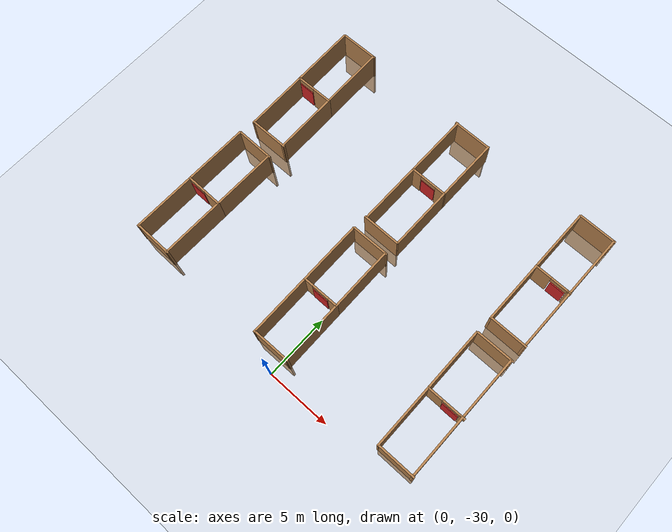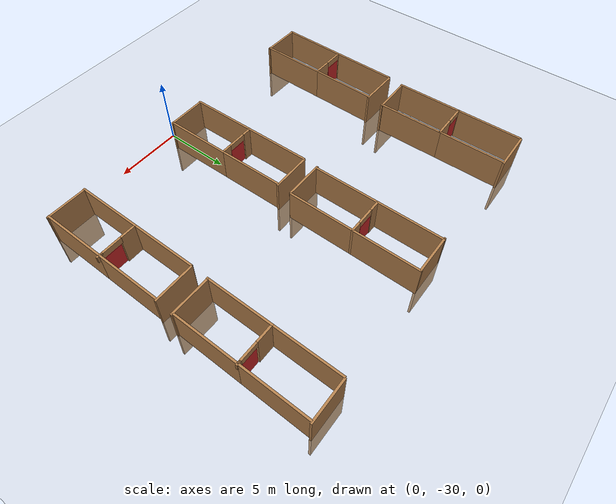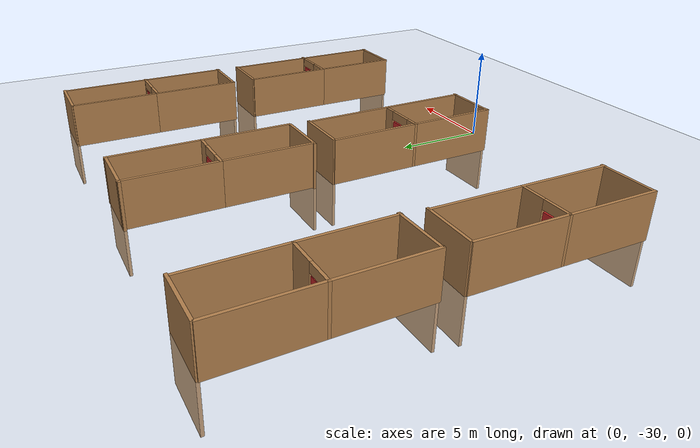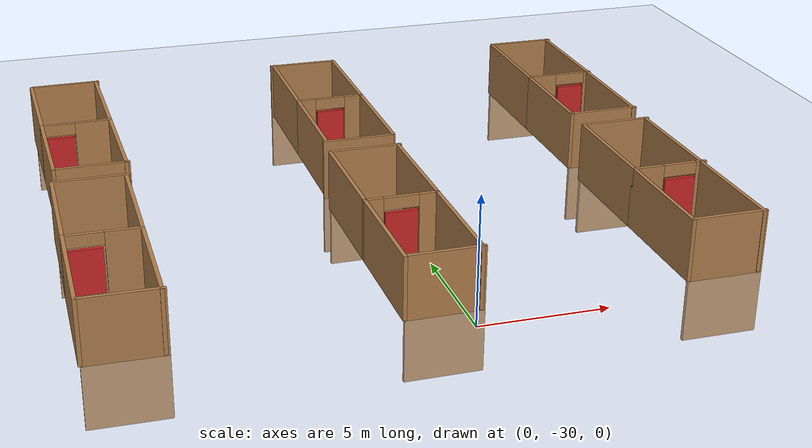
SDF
<sdf version="1.6">
 <world name="default">
  <model name="ground_plane">
   <static>1</static>
   <link name="link">
    <collision name="collision">
     <geometry><plane><normal>0 0 1</normal><size>100 100</size></plane></geometry>
     <surface><friction><ode><mu>100</mu><mu2>50</mu2></ode></friction></surface>
    </collision>
    <visual name="visual">
     <cast_shadows>0</cast_shadows>
     <geometry><plane><normal>0 0 1</normal><size>100 100</size></plane></geometry>
     <material>
      <script><uri>file://media/materials/scripts/gazebo.material</uri><name>Gazebo/Grey</name></script>
     </material>
    </visual>
   </link>
  </model>
  <model name="door_5">
   <link name="hinge">
    <inertial>
     <pose>-0.05 0 0 0 -0 0</pose>
     <mass>0.01</mass>
     <inertia><ixx>1</ixx><ixy>0</ixy><ixz>0</ixz><iyy>100</iyy><iyz>0</iyz><izz>1</izz></inertia>
    </inertial>
    <velocity_decay><linear>0</linear><angular>0</angular></velocity_decay>
   </link>
   <link name="door">
    <pose>0.1 -0.7 0.35 0 0 -1.57</pose>
    <inertial>
     <pose>0.1 -0.7 0.35 0 0 -1.57</pose>
     <mass>0.1</mass>
     <inertia><ixx>1</ixx><ixy>0</ixy><ixz>0</ixz><iyy>100</iyy><iyz>0</iyz><izz>1</izz></inertia>
    </inertial>
    <collision name="door_collision">
     <pose>0.1 -0.7 0.35 0 0 -1.57</pose>
     <geometry><box><size>1.2 0.15 1.8</size></box></geometry>
    </collision>
    <visual name="door_visual">
     <pose>0.1 -0.7 0.35 0 0 -1.57</pose>
     <geometry><box><size>1.2 0.15 1.8</size></box></geometry>
     <material><script><name>Gazebo/Red</name><uri>__default__</uri></script></material>
    </visual>
    <velocity_decay><linear>0</linear><angular>0</angular></velocity_decay>
   </link>
   <joint name="door_hinge" type="revolute">
    <child>door</child>
    <parent>hinge</parent>
    <pose>0.08 0 0 0 -0 0</pose>
    <axis>
     <xyz>0 0 1</xyz>
     <limit><lower>-1.57</lower><upper>1.57</upper><effort>0</effort><velocity>10</velocity></limit>
     <dynamics><spring_reference>0</spring_reference><spring_stiffness>0</spring_stiffness></dynamics>
     <use_parent_model_frame>0</use_parent_model_frame>
    </axis>
   </joint>
   <joint name="floor_link" type="revolute">
    <child>hinge</child>
    <parent>world</parent>
    <axis>
     <xyz>0 0 1</xyz>
     <limit><lower>0</lower><upper>0</upper><effort>0</effort><velocity>0</velocity></limit>
     <dynamics><spring_reference>0</spring_reference><spring_stiffness>0</spring_stiffness></dynamics>
     <use_parent_model_frame>0</use_parent_model_frame>
    </axis>
   </joint>
   <plugin name="door_plugin" filename="libdoor_plugin.so">
    <door_type>flip</door_type>
    <model_domain_space>door_</model_domain_space>
    <door_direction>clockwise</door_direction>
    <robotNamespace>/</robotNamespace>
   </plugin>
   <pose>-0.138625 -12.2538 0.3 0 -0 0</pose>
  </model>
  <model name="door_6">
   <link name="hinge">
    <inertial>
     <pose>-0.05 0 0 0 -0 0</pose>
     <mass>0.01</mass>
     <inertia><ixx>1</ixx><ixy>0</ixy><ixz>0</ixz><iyy>100</iyy><iyz>0</iyz><izz>1</izz></inertia>
    </inertial>
    <velocity_decay><linear>0</linear><angular>0</angular></velocity_decay>
   </link>
   <link name="door">
    <pose>0.1 -0.75 0.35 0 0 -1.57</pose>
    <inertial>
     <pose>0.1 -0.75 0.35 0 0 -1.57</pose>
     <mass>0.1</mass>
     <inertia><ixx>1</ixx><ixy>0</ixy><ixz>0</ixz><iyy>100</iyy><iyz>0</iyz><izz>1</izz></inertia>
    </inertial>
    <collision name="door_collision">
     <pose>0.1 -0.75 0.35 0 0 -1.57</pose>
     <geometry><box><size>1.3 0.15 1.8</size></box></geometry>
    </collision>
    <visual name="door_visual">
     <pose>0.1 -0.75 0.35 0 0 -1.57</pose>
     <geometry><box><size>1.3 0.15 1.8</size></box></geometry>
     <material><script><name>Gazebo/Red</name><uri>__default__</uri></script></material>
    </visual>
    <velocity_decay><linear>0</linear><angular>0</angular></velocity_decay>
   </link>
   <joint name="door_hinge" type="revolute">
    <child>door</child>
    <parent>hinge</parent>
    <pose>0.08 0 0 0 -0 0</pose>
    <axis>
     <xyz>0 0 1</xyz>
     <limit><lower>-1.57</lower><upper>1.57</upper><effort>0</effort><velocity>10</velocity></limit>
     <dynamics><spring_reference>0</spring_reference><spring_stiffness>0</spring_stiffness></dynamics>
     <use_parent_model_frame>0</use_parent_model_frame>
    </axis>
   </joint>
   <joint name="floor_link" type="revolute">
    <child>hinge</child>
    <parent>world</parent>
    <axis>
     <xyz>0 0 1</xyz>
     <limit><lower>0</lower><upper>0</upper><effort>0</effort><velocity>0</velocity></limit>
     <dynamics><spring_reference>0</spring_reference><spring_stiffness>0</spring_stiffness></dynamics>
     <use_parent_model_frame>0</use_parent_model_frame>
    </axis>
   </joint>
   <plugin name="door_plugin" filename="libdoor_plugin.so">
    <door_type>flip</door_type>
    <model_domain_space>door_</model_domain_space>
    <door_direction>clockwise</door_direction>
    <robotNamespace>/</robotNamespace>
   </plugin>
   <pose>-0.228773 -23.1883 0.3 0 -0 0</pose>
  </model>
  <model name="door_8">
   <link name="hinge">
    <inertial>
     <pose>-0.05 0 0 0 -0 0</pose>
     <mass>0.01</mass>
     <inertia><ixx>1</ixx><ixy>0</ixy><ixz>0</ixz><iyy>100</iyy><iyz>0</iyz><izz>1</izz></inertia>
    </inertial>
    <velocity_decay><linear>0</linear><angular>0</angular></velocity_decay>
   </link>
   <link name="door">
    <pose>0.1 -0.7 0.35 0 0 -1.57</pose>
    <inertial>
     <pose>0.1 -0.7 0.35 0 0 -1.57</pose>
     <mass>0.1</mass>
     <inertia><ixx>1</ixx><ixy>0</ixy><ixz>0</ixz><iyy>100</iyy><iyz>0</iyz><izz>1</izz></inertia>
    </inertial>
    <collision name="door_collision">
     <pose>0.1 -0.7 0.35 0 0 -1.57</pose>
     <geometry><box><size>1.2 0.15 1.8</size></box></geometry>
    </collision>
    <visual name="door_visual">
     <pose>0.1 -0.7 0.35 0 0 -1.57</pose>
     <geometry><box><size>1.2 0.15 1.8</size></box></geometry>
     <material><script><name>Gazebo/Red</name><uri>__default__</uri></script></material>
    </visual>
    <velocity_decay><linear>0</linear><angular>0</angular></velocity_decay>
   </link>
   <joint name="door_hinge" type="revolute">
    <child>door</child>
    <parent>hinge</parent>
    <pose>0.08 0 0 0 -0 0</pose>
    <axis>
     <xyz>0 0 1</xyz>
     <limit><lower>-1.57</lower><upper>1.57</upper><effort>0</effort><velocity>10</velocity></limit>
     <dynamics><spring_reference>0</spring_reference><spring_stiffness>0</spring_stiffness></dynamics>
     <use_parent_model_frame>0</use_parent_model_frame>
    </axis>
   </joint>
   <joint name="floor_link" type="revolute">
    <child>hinge</child>
    <parent>world</parent>
    <axis>
     <xyz>0 0 1</xyz>
     <limit><lower>0</lower><upper>0</upper><effort>0</effort><velocity>0</velocity></limit>
     <dynamics><spring_reference>0</spring_reference><spring_stiffness>0</spring_stiffness></dynamics>
     <use_parent_model_frame>0</use_parent_model_frame>
    </axis>
   </joint>
   <plugin name="door_plugin" filename="libdoor_plugin.so">
    <door_type>flip</door_type>
    <model_domain_space>door_</model_domain_space>
    <door_direction>clockwise</door_direction>
    <robotNamespace>/</robotNamespace>
   </plugin>
   <pose>11.3057 -12.1813 0.3 0 -0 0</pose>
  </model>
  <model name="door_9">
   <link name="hinge">
    <inertial>
     <pose>-0.05 0 0 0 -0 0</pose>
     <mass>0.01</mass>
     <inertia><ixx>1</ixx><ixy>0</ixy><ixz>0</ixz><iyy>100</iyy><iyz>0</iyz><izz>1</izz></inertia>
    </inertial>
    <velocity_decay><linear>0</linear><angular>0</angular></velocity_decay>
   </link>
   <link name="door">
    <pose>0.1 -0.75 0.35 0 0 -1.57</pose>
    <inertial>
     <pose>0.1 -0.75 0.35 0 0 -1.57</pose>
     <mass>0.1</mass>
     <inertia><ixx>1</ixx><ixy>0</ixy><ixz>0</ixz><iyy>100</iyy><iyz>0</iyz><izz>1</izz></inertia>
    </inertial>
    <collision name="door_collision">
     <pose>0.1 -0.75 0.35 0 0 -1.57</pose>
     <geometry><box><size>1.3 0.15 1.8</size></box></geometry>
    </collision>
    <visual name="door_visual">
     <pose>0.1 -0.75 0.35 0 0 -1.57</pose>
     <geometry><box><size>1.3 0.15 1.8</size></box></geometry>
     <material><script><name>Gazebo/Red</name><uri>__default__</uri></script></material>
    </visual>
    <velocity_decay><linear>0</linear><angular>0</angular></velocity_decay>
   </link>
   <joint name="door_hinge" type="revolute">
    <child>door</child>
    <parent>hinge</parent>
    <pose>0.08 0 0 0 -0 0</pose>
    <axis>
     <xyz>0 0 1</xyz>
     <limit><lower>-1.57</lower><upper>1.57</upper><effort>0</effort><velocity>10</velocity></limit>
     <dynamics><spring_reference>0</spring_reference><spring_stiffness>0</spring_stiffness></dynamics>
     <use_parent_model_frame>0</use_parent_model_frame>
    </axis>
   </joint>
   <joint name="floor_link" type="revolute">
    <child>hinge</child>
    <parent>world</parent>
    <axis>
     <xyz>0 0 1</xyz>
     <limit><lower>0</lower><upper>0</upper><effort>0</effort><velocity>0</velocity></limit>
     <dynamics><spring_reference>0</spring_reference><spring_stiffness>0</spring_stiffness></dynamics>
     <use_parent_model_frame>0</use_parent_model_frame>
    </axis>
   </joint>
   <plugin name="door_plugin" filename="libdoor_plugin.so">
    <door_type>flip</door_type>
    <model_domain_space>door_</model_domain_space>
    <door_direction>clockwise</door_direction>
    <robotNamespace>/</robotNamespace>
   </plugin>
   <pose>11.2429 -23.2301 0.3 0 -0 0</pose>
  </model>
  <model name="door_13">
   <link name="hinge">
    <inertial>
     <pose>-0.05 0 0 0 -0 0</pose>
     <mass>0.01</mass>
     <inertia><ixx>1</ixx><ixy>0</ixy><ixz>0</ixz><iyy>100</iyy><iyz>0</iyz><izz>1</izz></inertia>
    </inertial>
    <velocity_decay><linear>0</linear><angular>0</angular></velocity_decay>
   </link>
   <link name="door">
    <pose>0.1 -0.75 0.35 0 0 -1.57</pose>
    <inertial>
     <pose>0.1 -0.75 0.35 0 0 -1.57</pose>
     <mass>0.1</mass>
     <inertia><ixx>1</ixx><ixy>0</ixy><ixz>0</ixz><iyy>100</iyy><iyz>0</iyz><izz>1</izz></inertia>
    </inertial>
    <collision name="door_collision">
     <pose>0.1 -0.75 0.35 0 0 -1.57</pose>
     <geometry><box><size>1.3 0.15 1.8</size></box></geometry>
    </collision>
    <visual name="door_visual">
     <pose>0.1 -0.75 0.35 0 0 -1.57</pose>
     <geometry><box><size>1.3 0.15 1.8</size></box></geometry>
     <material><script><name>Gazebo/Red</name><uri>__default__</uri></script></material>
    </visual>
    <velocity_decay><linear>0</linear><angular>0</angular></velocity_decay>
   </link>
   <joint name="door_hinge" type="revolute">
    <child>door</child>
    <parent>hinge</parent>
    <pose>0.08 0 0 0 -0 0</pose>
    <axis>
     <xyz>0 0 1</xyz>
     <limit><lower>-1.57</lower><upper>1.57</upper><effort>0</effort><velocity>10</velocity></limit>
     <dynamics><spring_reference>0</spring_reference><spring_stiffness>0</spring_stiffness></dynamics>
     <use_parent_model_frame>0</use_parent_model_frame>
    </axis>
   </joint>
   <joint name="floor_link" type="revolute">
    <child>hinge</child>
    <parent>world</parent>
    <axis>
     <xyz>0 0 1</xyz>
     <limit><lower>0</lower><upper>0</upper><effort>0</effort><velocity>0</velocity></limit>
     <dynamics><spring_reference>0</spring_reference><spring_stiffness>0</spring_stiffness></dynamics>
     <use_parent_model_frame>0</use_parent_model_frame>
    </axis>
   </joint>
   <plugin name="door_plugin" filename="libdoor_plugin.so">
    <door_type>flip</door_type>
    <model_domain_space>door_</model_domain_space>
    <door_direction>clockwise</door_direction>
    <robotNamespace>/</robotNamespace>
   </plugin>
   <pose>-11.9963 -23.2247 0.3 0 -0 0</pose>
  </model>
  <model name="door_14">
   <link name="hinge">
    <inertial>
     <pose>-0.05 0 0 0 -0 0</pose>
     <mass>0.01</mass>
     <inertia><ixx>1</ixx><ixy>0</ixy><ixz>0</ixz><iyy>100</iyy><iyz>0</iyz><izz>1</izz></inertia>
    </inertial>
    <velocity_decay><linear>0</linear><angular>0</angular></velocity_decay>
   </link>
   <link name="door">
    <pose>0.1 -0.7 0.35 0 0 -1.57</pose>
    <inertial>
     <pose>0.1 -0.7 0.35 0 0 -1.57</pose>
     <mass>0.1</mass>
     <inertia><ixx>1</ixx><ixy>0</ixy><ixz>0</ixz><iyy>100</iyy><iyz>0</iyz><izz>1</izz></inertia>
    </inertial>
    <collision name="door_collision">
     <pose>0.1 -0.7 0.35 0 0 -1.57</pose>
     <geometry><box><size>1.2 0.15 1.8</size></box></geometry>
    </collision>
    <visual name="door_visual">
     <pose>0.1 -0.7 0.35 0 0 -1.57</pose>
     <geometry><box><size>1.2 0.15 1.8</size></box></geometry>
     <material><script><name>Gazebo/Red</name><uri>__default__</uri></script></material>
    </visual>
    <velocity_decay><linear>0</linear><angular>0</angular></velocity_decay>
   </link>
   <joint name="door_hinge" type="revolute">
    <child>door</child>
    <parent>hinge</parent>
    <pose>0.08 0 0 0 -0 0</pose>
    <axis>
     <xyz>0 0 1</xyz>
     <limit><lower>-1.57</lower><upper>1.57</upper><effort>0</effort><velocity>10</velocity></limit>
     <dynamics><spring_reference>0</spring_reference><spring_stiffness>0</spring_stiffness></dynamics>
     <use_parent_model_frame>0</use_parent_model_frame>
    </axis>
   </joint>
   <joint name="floor_link" type="revolute">
    <child>hinge</child>
    <parent>world</parent>
    <axis>
     <xyz>0 0 1</xyz>
     <limit><lower>0</lower><upper>0</upper><effort>0</effort><velocity>0</velocity></limit>
     <dynamics><spring_reference>0</spring_reference><spring_stiffness>0</spring_stiffness></dynamics>
     <use_parent_model_frame>0</use_parent_model_frame>
    </axis>
   </joint>
   <plugin name="door_plugin" filename="libdoor_plugin.so">
    <door_type>flip</door_type>
    <model_domain_space>door_</model_domain_space>
    <door_direction>clockwise</door_direction>
    <robotNamespace>/</robotNamespace>
   </plugin>
   <pose>-11.8998 -12.2711 0.3 0 -0 0</pose>
  </model>
  <model name="middle140">
   <pose>-1.27812 -23.998 0 0 -0 1.57754</pose>
   <link name="Wall_11">
    <collision name="Wall_11_Collision">
     <geometry><box><size>5 0.15 2.5</size></box></geometry>
     <pose>0 0 1.25 0 -0 0</pose>
    </collision>
    <visual name="Wall_11_Visual">
     <pose>0 0 1.25 0 -0 0</pose>
     <geometry><box><size>5 0.15 2.5</size></box></geometry>
     <material>
      <script><uri>file://media/materials/scripts/gazebo.material</uri><name>Gazebo/Wood</name></script>
      <ambient>1 1 1 1</ambient>
     </material>
     <meta><layer>0</layer></meta>
    </visual>
    <pose>-2.425 -1.83058 0 0 -0 3.14159</pose>
   </link>
   <link name="Wall_5">
    <collision name="Wall_5_Collision">
     <geometry><box><size>5 0.15 2.5</size></box></geometry>
     <pose>0 0 1.25 0 -0 0</pose>
    </collision>
    <visual name="Wall_5_Visual">
     <pose>0 0 1.25 0 -0 0</pose>
     <geometry><box><size>5 0.15 2.5</size></box></geometry>
     <material>
      <script><uri>file://media/materials/scripts/gazebo.material</uri><name>Gazebo/Wood</name></script>
      <ambient>1 1 1 1</ambient>
     </material>
     <meta><layer>0</layer></meta>
    </visual>
    <pose>-2.425 1.01942 0 0 -0 0</pose>
   </link>
   <link name="Wall_6">
    <pose>0 -0.405576 0 0 -0 -1.5708</pose>
    <visual name="Wall_6_Visual_0">
     <pose>-1.1025 0 1.25 0 -0 0</pose>
     <geometry><box><size>0.795 0.15 2.5</size></box></geometry>
     <material>
      <script><uri>file://media/materials/scripts/gazebo.material</uri><name>Gazebo/Wood</name></script>
      <ambient>1 1 1 1</ambient>
     </material>
     <meta><layer>0</layer></meta>
    </visual>
    <collision name="Wall_6_Collision_0">
     <geometry><box><size>0.795 0.15 2.5</size></box></geometry>
     <pose>-1.1025 0 1.25 0 -0 0</pose>
    </collision>
    <visual name="Wall_6_Visual_1">
     <pose>1.0975 0 1.25 0 -0 0</pose>
     <geometry><box><size>0.805 0.15 2.5</size></box></geometry>
     <material>
      <script><uri>file://media/materials/scripts/gazebo.material</uri><name>Gazebo/Wood</name></script>
      <ambient>1 1 1 1</ambient>
     </material>
     <meta><layer>0</layer></meta>
    </visual>
    <collision name="Wall_6_Collision_1">
     <geometry><box><size>0.805 0.15 2.5</size></box></geometry>
     <pose>1.0975 0 1.25 0 -0 0</pose>
    </collision>
    <visual name="Wall_6_Visual_2">
     <pose>-0.005 0 2.25 0 -0 0</pose>
     <geometry><box><size>1.4 0.15 0.5</size></box></geometry>
     <material>
      <script><uri>file://media/materials/scripts/gazebo.material</uri><name>Gazebo/Wood</name></script>
      <ambient>1 1 1 1</ambient>
     </material>
     <meta><layer>0</layer></meta>
    </visual>
    <collision name="Wall_6_Collision_2">
     <geometry><box><size>1.4 0.15 0.5</size></box></geometry>
     <pose>-0.005 0 2.25 0 -0 0</pose>
    </collision>
   </link>
   <link name="Wall_7">
    <collision name="Wall_7_Collision">
     <geometry><box><size>5 0.15 2.5</size></box></geometry>
     <pose>0 0 1.25 0 -0 0</pose>
    </collision>
    <visual name="Wall_7_Visual">
     <pose>0 0 1.25 0 -0 0</pose>
     <geometry><box><size>5 0.15 2.5</size></box></geometry>
     <material>
      <script><uri>file://media/materials/scripts/gazebo.material</uri><name>Gazebo/Wood</name></script>
      <ambient>1 1 1 1</ambient>
     </material>
     <meta><layer>0</layer></meta>
    </visual>
    <pose>2.425 -1.83058 0 0 -0 0</pose>
   </link>
   <link name="Wall_9">
    <collision name="Wall_9_Collision">
     <geometry><box><size>5 0.15 2.5</size></box></geometry>
     <pose>0 0 1.25 0 -0 0</pose>
    </collision>
    <visual name="Wall_9_Visual">
     <pose>0 0 1.25 0 -0 0</pose>
     <geometry><box><size>5 0.15 2.5</size></box></geometry>
     <material>
      <script><uri>file://media/materials/scripts/gazebo.material</uri><name>Gazebo/Wood</name></script>
      <ambient>1 1 1 1</ambient>
     </material>
     <meta><layer>0</layer></meta>
    </visual>
    <pose>2.425 1.01942 0 0 -0 0</pose>
   </link>
   <link name="Wall_10">
    <collision name="Wall_10_Collision">
     <geometry><box><size>0.15 3 5</size></box></geometry>
     <pose>-7.25 -1.5 0 0 -0 0</pose>
    </collision>
    <visual name="Wall_10_Visual">
     <pose>-7.25 -1.5 0 0 -0 0</pose>
     <geometry><box><size>0.15 3 5</size></box></geometry>
     <material>
      <script><uri>file://media/materials/scripts/gazebo.material</uri><name>Gazebo/Wood</name></script>
      <ambient>1 1 1 1</ambient>
     </material>
     <meta><layer>0</layer></meta>
    </visual>
    <pose>2.425 1.01942 0 0 -0 0</pose>
   </link>
   <link name="Wall_12">
    <collision name="Wall_12_Collision">
     <geometry><box><size>0.15 3 5</size></box></geometry>
     <pose>2.5 -1.5 0 0 -0 0</pose>
    </collision>
    <visual name="Wall_12_Visual">
     <pose>2.5 -1.5 0 0 -0 0</pose>
     <geometry><box><size>0.15 3 5</size></box></geometry>
     <material>
      <script><uri>file://media/materials/scripts/gazebo.material</uri><name>Gazebo/Wood</name></script>
      <ambient>1 1 1 1</ambient>
     </material>
     <meta><layer>0</layer></meta>
    </visual>
    <pose>2.425 1.01942 0 0 -0 0</pose>
   </link>
   <static>1</static>
  </model>
  <model name="right090">
   <pose>9.66419 -24.0336 0 0 -0 1.57143</pose>
   <link name="Wall_11">
    <collision name="Wall_11_Collision">
     <geometry><box><size>5 0.15 2.5</size></box></geometry>
     <pose>0 0 1.25 0 -0 0</pose>
    </collision>
    <visual name="Wall_11_Visual">
     <pose>0 0 1.25 0 -0 0</pose>
     <geometry><box><size>5 0.15 2.5</size></box></geometry>
     <material>
      <script><uri>file://media/materials/scripts/gazebo.material</uri><name>Gazebo/Wood</name></script>
      <ambient>1 1 1 1</ambient>
     </material>
     <meta><layer>0</layer></meta>
    </visual>
    <pose>-2.425 -1.83058 0 0 -0 3.14159</pose>
   </link>
   <link name="Wall_5">
    <collision name="Wall_5_Collision">
     <geometry><box><size>5 0.15 2.5</size></box></geometry>
     <pose>0 0 1.25 0 -0 0</pose>
    </collision>
    <visual name="Wall_5_Visual">
     <pose>0 0 1.25 0 -0 0</pose>
     <geometry><box><size>5 0.15 2.5</size></box></geometry>
     <material>
      <script><uri>file://media/materials/scripts/gazebo.material</uri><name>Gazebo/Wood</name></script>
      <ambient>1 1 1 1</ambient>
     </material>
     <meta><layer>0</layer></meta>
    </visual>
    <pose>-2.425 1.01942 0 0 -0 0</pose>
   </link>
   <link name="Wall_6">
    <pose>0 -0.405576 0 0 -0 -1.5708</pose>
    <visual name="Wall_6_Visual_0">
     <pose>-0.8025 0 1.25 0 -0 0</pose>
     <geometry><box><size>1.255 0.15 2.5</size></box></geometry>
     <material>
      <script><uri>file://media/materials/scripts/gazebo.material</uri><name>Gazebo/Wood</name></script>
      <ambient>1 1 1 1</ambient>
     </material>
     <meta><layer>0</layer></meta>
    </visual>
    <collision name="Wall_6_Collision_0">
     <geometry><box><size>1.255 0.15 2.5</size></box></geometry>
     <pose>-0.8025 0 1.25 0 -0 0</pose>
    </collision>
    <visual name="Wall_6_Visual_1">
     <pose>1.2975 0 1.25 0 -0 0</pose>
     <geometry><box><size>0.195 0.15 2.5</size></box></geometry>
     <material>
      <script><uri>file://media/materials/scripts/gazebo.material</uri><name>Gazebo/Wood</name></script>
      <ambient>1 1 1 1</ambient>
     </material>
     <meta><layer>0</layer></meta>
    </visual>
    <collision name="Wall_6_Collision_1">
     <geometry><box><size>0.195 0.15 2.5</size></box></geometry>
     <pose>1.2975 0 1.25 0 -0 0</pose>
    </collision>
    <visual name="Wall_6_Visual_2">
     <pose>0.705 0 2.25 0 -0 0</pose>
     <geometry><box><size>1.9 0.15 0.5</size></box></geometry>
     <material>
      <script><uri>file://media/materials/scripts/gazebo.material</uri><name>Gazebo/Wood</name></script>
      <ambient>1 1 1 1</ambient>
     </material>
     <meta><layer>0</layer></meta>
    </visual>
    <collision name="Wall_6_Collision_2">
     <geometry><box><size>1.9 0.15 0.5</size></box></geometry>
     <pose>0.705 0 2.25 0 -0 0</pose>
    </collision>
   </link>
   <link name="Wall_7">
    <collision name="Wall_7_Collision">
     <geometry><box><size>5 0.15 2.5</size></box></geometry>
     <pose>0 0 1.25 0 -0 0</pose>
    </collision>
    <visual name="Wall_7_Visual">
     <pose>0 0 1.25 0 -0 0</pose>
     <geometry><box><size>5 0.15 2.5</size></box></geometry>
     <material>
      <script><uri>file://media/materials/scripts/gazebo.material</uri><name>Gazebo/Wood</name></script>
      <ambient>1 1 1 1</ambient>
     </material>
     <meta><layer>0</layer></meta>
    </visual>
    <pose>2.425 -1.83058 0 0 -0 0</pose>
   </link>
   <link name="Wall_9">
    <collision name="Wall_9_Collision">
     <geometry><box><size>5 0.15 2.5</size></box></geometry>
     <pose>0 0 1.25 0 -0 0</pose>
    </collision>
    <visual name="Wall_9_Visual">
     <pose>0 0 1.25 0 -0 0</pose>
     <geometry><box><size>5 0.15 2.5</size></box></geometry>
     <material>
      <script><uri>file://media/materials/scripts/gazebo.material</uri><name>Gazebo/Wood</name></script>
      <ambient>1 1 1 1</ambient>
     </material>
     <meta><layer>0</layer></meta>
    </visual>
    <pose>2.425 1.01942 0 0 -0 0</pose>
   </link>
   <link name="Wall_10">
    <collision name="Wall_10_Collision">
     <geometry><box><size>0.15 3 5</size></box></geometry>
     <pose>-7.25 -1.5 0 0 -0 0</pose>
    </collision>
    <visual name="Wall_10_Visual">
     <pose>-7.25 -1.5 0 0 -0 0</pose>
     <geometry><box><size>0.15 3 5</size></box></geometry>
     <material>
      <script><uri>file://media/materials/scripts/gazebo.material</uri><name>Gazebo/Wood</name></script>
      <ambient>1 1 1 1</ambient>
     </material>
     <meta><layer>0</layer></meta>
    </visual>
    <pose>2.425 1.01942 0 0 -0 0</pose>
   </link>
   <link name="Wall_12">
    <collision name="Wall_12_Collision">
     <geometry><box><size>0.15 3 5</size></box></geometry>
     <pose>2.5 -1.5 0 0 -0 0</pose>
    </collision>
    <visual name="Wall_12_Visual">
     <pose>2.5 -1.5 0 0 -0 0</pose>
     <geometry><box><size>0.15 3 5</size></box></geometry>
     <material>
      <script><uri>file://media/materials/scripts/gazebo.material</uri><name>Gazebo/Wood</name></script>
      <ambient>1 1 1 1</ambient>
     </material>
     <meta><layer>0</layer></meta>
    </visual>
    <pose>2.425 1.01942 0 0 -0 0</pose>
   </link>
   <static>1</static>
  </model>
  <model name="left140">
   <pose>-12.3907 -24.0406 0 0 -0 1.55794</pose>
   <link name="Wall_11">
    <collision name="Wall_11_Collision">
     <geometry><box><size>5 0.15 2.5</size></box></geometry>
     <pose>0 0 1.25 0 -0 0</pose>
    </collision>
    <visual name="Wall_11_Visual">
     <pose>0 0 1.25 0 -0 0</pose>
     <geometry><box><size>5 0.15 2.5</size></box></geometry>
     <material>
      <script><uri>file://media/materials/scripts/gazebo.material</uri><name>Gazebo/Wood</name></script>
      <ambient>1 1 1 1</ambient>
     </material>
     <meta><layer>0</layer></meta>
    </visual>
    <pose>-2.425 -1.83058 0 0 -0 3.14159</pose>
   </link>
   <link name="Wall_5">
    <collision name="Wall_5_Collision">
     <geometry><box><size>5 0.15 2.5</size></box></geometry>
     <pose>0 0 1.25 0 -0 0</pose>
    </collision>
    <visual name="Wall_5_Visual">
     <pose>0 0 1.25 0 -0 0</pose>
     <geometry><box><size>5 0.15 2.5</size></box></geometry>
     <material>
      <script><uri>file://media/materials/scripts/gazebo.material</uri><name>Gazebo/Wood</name></script>
      <ambient>1 1 1 1</ambient>
     </material>
     <meta><layer>0</layer></meta>
    </visual>
    <pose>-2.425 1.01942 0 0 -0 0</pose>
   </link>
   <link name="Wall_6">
    <pose>0 -0.405576 0 0 -0 -1.5708</pose>
    <visual name="Wall_6_Visual_0">
     <pose>-1.4225 0 1.25 0 -0 0</pose>
     <geometry><box><size>0.155 0.15 2.5</size></box></geometry>
     <material>
      <script><uri>file://media/materials/scripts/gazebo.material</uri><name>Gazebo/Wood</name></script>
      <ambient>1 1 1 1</ambient>
     </material>
     <meta><layer>0</layer></meta>
    </visual>
    <collision name="Wall_6_Collision_0">
     <geometry><box><size>0.155 0.15 2.5</size></box></geometry>
     <pose>-1.4225 0 1.25 0 -0 0</pose>
    </collision>
    <visual name="Wall_6_Visual_1">
     <pose>0.7775 0 1.25 0 -0 0</pose>
     <geometry><box><size>1.445 0.15 2.5</size></box></geometry>
     <material>
      <script><uri>file://media/materials/scripts/gazebo.material</uri><name>Gazebo/Wood</name></script>
      <ambient>1 1 1 1</ambient>
     </material>
     <meta><layer>0</layer></meta>
    </visual>
    <collision name="Wall_6_Collision_1">
     <geometry><box><size>1.445 0.15 2.5</size></box></geometry>
     <pose>0.7775 0 1.25 0 -0 0</pose>
    </collision>
    <visual name="Wall_6_Visual_2">
     <pose>-0.645 0 2.25 0 -0 0</pose>
     <geometry><box><size>1.4 0.15 0.5</size></box></geometry>
     <material>
      <script><uri>file://media/materials/scripts/gazebo.material</uri><name>Gazebo/Wood</name></script>
      <ambient>1 1 1 1</ambient>
     </material>
     <meta><layer>0</layer></meta>
    </visual>
    <collision name="Wall_6_Collision_2">
     <geometry><box><size>1.4 0.15 0.5</size></box></geometry>
     <pose>-0.645 0 2.25 0 -0 0</pose>
    </collision>
   </link>
   <link name="Wall_7">
    <collision name="Wall_7_Collision">
     <geometry><box><size>5 0.15 2.5</size></box></geometry>
     <pose>0 0 1.25 0 -0 0</pose>
    </collision>
    <visual name="Wall_7_Visual">
     <pose>0 0 1.25 0 -0 0</pose>
     <geometry><box><size>5 0.15 2.5</size></box></geometry>
     <material>
      <script><uri>file://media/materials/scripts/gazebo.material</uri><name>Gazebo/Wood</name></script>
      <ambient>1 1 1 1</ambient>
     </material>
     <meta><layer>0</layer></meta>
    </visual>
    <pose>2.425 -1.83058 0 0 -0 0</pose>
   </link>
   <link name="Wall_9">
    <collision name="Wall_9_Collision">
     <geometry><box><size>5 0.15 2.5</size></box></geometry>
     <pose>0 0 1.25 0 -0 0</pose>
    </collision>
    <visual name="Wall_9_Visual">
     <pose>0 0 1.25 0 -0 0</pose>
     <geometry><box><size>5 0.15 2.5</size></box></geometry>
     <material>
      <script><uri>file://media/materials/scripts/gazebo.material</uri><name>Gazebo/Wood</name></script>
      <ambient>1 1 1 1</ambient>
     </material>
     <meta><layer>0</layer></meta>
    </visual>
    <pose>2.425 1.01942 0 0 -0 0</pose>
   </link>
   <link name="Wall_10">
    <collision name="Wall_10_Collision">
     <geometry><box><size>0.15 3 5</size></box></geometry>
     <pose>-7.25 -1.5 0 0 -0 0</pose>
    </collision>
    <visual name="Wall_10_Visual">
     <pose>-7.25 -1.5 0 0 -0 0</pose>
     <geometry><box><size>0.15 3 5</size></box></geometry>
     <material>
      <script><uri>file://media/materials/scripts/gazebo.material</uri><name>Gazebo/Wood</name></script>
      <ambient>1 1 1 1</ambient>
     </material>
     <meta><layer>0</layer></meta>
    </visual>
    <pose>2.425 1.01942 0 0 -0 0</pose>
   </link>
   <link name="Wall_12">
    <collision name="Wall_12_Collision">
     <geometry><box><size>0.15 3 5</size></box></geometry>
     <pose>2.5 -1.5 0 0 -0 0</pose>
    </collision>
    <visual name="Wall_12_Visual">
     <pose>2.5 -1.5 0 0 -0 0</pose>
     <geometry><box><size>0.15 3 5</size></box></geometry>
     <material>
      <script><uri>file://media/materials/scripts/gazebo.material</uri><name>Gazebo/Wood</name></script>
      <ambient>1 1 1 1</ambient>
     </material>
     <meta><layer>0</layer></meta>
    </visual>
    <pose>2.425 1.01942 0 0 -0 0</pose>
   </link>
   <static>1</static>
  </model>
  <model name="middle130">
   <pose>-0.346814 -13.0481 0 0 0 -1.57152</pose>
   <link name="Wall_11">
    <collision name="Wall_11_Collision">
     <geometry><box><size>5 0.15 2.5</size></box></geometry>
     <pose>0 0 1.25 0 -0 0</pose>
    </collision>
    <visual name="Wall_11_Visual">
     <pose>0 0 1.25 0 -0 0</pose>
     <geometry><box><size>5 0.15 2.5</size></box></geometry>
     <material>
      <script><uri>file://media/materials/scripts/gazebo.material</uri><name>Gazebo/Wood</name></script>
      <ambient>1 1 1 1</ambient>
     </material>
     <meta><layer>0</layer></meta>
    </visual>
    <pose>-2.425 -1.83058 0 0 -0 3.14159</pose>
   </link>
   <link name="Wall_5">
    <collision name="Wall_5_Collision">
     <geometry><box><size>5 0.15 2.5</size></box></geometry>
     <pose>0 0 1.25 0 -0 0</pose>
    </collision>
    <visual name="Wall_5_Visual">
     <pose>0 0 1.25 0 -0 0</pose>
     <geometry><box><size>5 0.15 2.5</size></box></geometry>
     <material>
      <script><uri>file://media/materials/scripts/gazebo.material</uri><name>Gazebo/Wood</name></script>
      <ambient>1 1 1 1</ambient>
     </material>
     <meta><layer>0</layer></meta>
    </visual>
    <pose>-2.425 1.01942 0 0 -0 0</pose>
   </link>
   <link name="Wall_6">
    <pose>0 -0.405576 0 0 -0 -1.5708</pose>
    <visual name="Wall_6_Visual_0">
     <pose>-1.0775 0 1.25 0 -0 0</pose>
     <geometry><box><size>0.845 0.15 2.5</size></box></geometry>
     <material>
      <script><uri>file://media/materials/scripts/gazebo.material</uri><name>Gazebo/Wood</name></script>
      <ambient>1 1 1 1</ambient>
     </material>
     <meta><layer>0</layer></meta>
    </visual>
    <collision name="Wall_6_Collision_0">
     <geometry><box><size>0.845 0.15 2.5</size></box></geometry>
     <pose>-1.0775 0 1.25 0 -0 0</pose>
    </collision>
    <visual name="Wall_6_Visual_1">
     <pose>1.0725 0 1.25 0 -0 0</pose>
     <geometry><box><size>0.855 0.15 2.5</size></box></geometry>
     <material>
      <script><uri>file://media/materials/scripts/gazebo.material</uri><name>Gazebo/Wood</name></script>
      <ambient>1 1 1 1</ambient>
     </material>
     <meta><layer>0</layer></meta>
    </visual>
    <collision name="Wall_6_Collision_1">
     <geometry><box><size>0.855 0.15 2.5</size></box></geometry>
     <pose>1.0725 0 1.25 0 -0 0</pose>
    </collision>
    <visual name="Wall_6_Visual_2">
     <pose>-0.005 0 2.25 0 -0 0</pose>
     <geometry><box><size>1.3 0.15 0.5</size></box></geometry>
     <material>
      <script><uri>file://media/materials/scripts/gazebo.material</uri><name>Gazebo/Wood</name></script>
      <ambient>1 1 1 1</ambient>
     </material>
     <meta><layer>0</layer></meta>
    </visual>
    <collision name="Wall_6_Collision_2">
     <geometry><box><size>1.3 0.15 0.5</size></box></geometry>
     <pose>-0.005 0 2.25 0 -0 0</pose>
    </collision>
   </link>
   <link name="Wall_7">
    <collision name="Wall_7_Collision">
     <geometry><box><size>5 0.15 2.5</size></box></geometry>
     <pose>0 0 1.25 0 -0 0</pose>
    </collision>
    <visual name="Wall_7_Visual">
     <pose>0 0 1.25 0 -0 0</pose>
     <geometry><box><size>5 0.15 2.5</size></box></geometry>
     <material>
      <script><uri>file://media/materials/scripts/gazebo.material</uri><name>Gazebo/Wood</name></script>
      <ambient>1 1 1 1</ambient>
     </material>
     <meta><layer>0</layer></meta>
    </visual>
    <pose>2.425 -1.83058 0 0 -0 0</pose>
   </link>
   <link name="Wall_9">
    <collision name="Wall_9_Collision">
     <geometry><box><size>5 0.15 2.5</size></box></geometry>
     <pose>0 0 1.25 0 -0 0</pose>
    </collision>
    <visual name="Wall_9_Visual">
     <pose>0 0 1.25 0 -0 0</pose>
     <geometry><box><size>5 0.15 2.5</size></box></geometry>
     <material>
      <script><uri>file://media/materials/scripts/gazebo.material</uri><name>Gazebo/Wood</name></script>
      <ambient>1 1 1 1</ambient>
     </material>
     <meta><layer>0</layer></meta>
    </visual>
    <pose>2.425 1.01942 0 0 -0 0</pose>
   </link>
   <link name="Wall_10">
    <collision name="Wall_10_Collision">
     <geometry><box><size>0.15 3 5</size></box></geometry>
     <pose>-7.25 -1.5 0 0 -0 0</pose>
    </collision>
    <visual name="Wall_10_Visual">
     <pose>-7.25 -1.5 0 0 -0 0</pose>
     <geometry><box><size>0.15 3 5</size></box></geometry>
     <material>
      <script><uri>file://media/materials/scripts/gazebo.material</uri><name>Gazebo/Wood</name></script>
      <ambient>1 1 1 1</ambient>
     </material>
     <meta><layer>0</layer></meta>
    </visual>
    <pose>2.425 1.01942 0 0 -0 0</pose>
   </link>
   <link name="Wall_12">
    <collision name="Wall_12_Collision">
     <geometry><box><size>0.15 3 5</size></box></geometry>
     <pose>2.5 -1.5 0 0 -0 0</pose>
    </collision>
    <visual name="Wall_12_Visual">
     <pose>2.5 -1.5 0 0 -0 0</pose>
     <geometry><box><size>0.15 3 5</size></box></geometry>
     <material>
      <script><uri>file://media/materials/scripts/gazebo.material</uri><name>Gazebo/Wood</name></script>
      <ambient>1 1 1 1</ambient>
     </material>
     <meta><layer>0</layer></meta>
    </visual>
    <pose>2.425 1.01942 0 0 -0 0</pose>
   </link>
   <static>1</static>
  </model>
  <model name="right090_0">
   <pose>9.74112 -12.9339 0 0 -0 1.56841</pose>
   <link name="Wall_11">
    <collision name="Wall_11_Collision">
     <geometry><box><size>5 0.15 2.5</size></box></geometry>
     <pose>0 0 1.25 0 -0 0</pose>
    </collision>
    <visual name="Wall_11_Visual">
     <pose>0 0 1.25 0 -0 0</pose>
     <geometry><box><size>5 0.15 2.5</size></box></geometry>
     <material>
      <script><uri>file://media/materials/scripts/gazebo.material</uri><name>Gazebo/Wood</name></script>
      <ambient>1 1 1 1</ambient>
     </material>
     <meta><layer>0</layer></meta>
    </visual>
    <pose>-2.425 -1.83058 0 0 -0 3.14159</pose>
   </link>
   <link name="Wall_5">
    <collision name="Wall_5_Collision">
     <geometry><box><size>5 0.15 2.5</size></box></geometry>
     <pose>0 0 1.25 0 -0 0</pose>
    </collision>
    <visual name="Wall_5_Visual">
     <pose>0 0 1.25 0 -0 0</pose>
     <geometry><box><size>5 0.15 2.5</size></box></geometry>
     <material>
      <script><uri>file://media/materials/scripts/gazebo.material</uri><name>Gazebo/Wood</name></script>
      <ambient>1 1 1 1</ambient>
     </material>
     <meta><layer>0</layer></meta>
    </visual>
    <pose>-2.425 1.01942 0 0 -0 0</pose>
   </link>
   <link name="Wall_6">
    <pose>0 -0.405576 0 0 -0 -1.5708</pose>
    <visual name="Wall_6_Visual_0">
     <pose>-0.7525 0 1.25 0 -0 0</pose>
     <geometry><box><size>1.255 0.15 2.5</size></box></geometry>
     <material>
      <script><uri>file://media/materials/scripts/gazebo.material</uri><name>Gazebo/Wood</name></script>
      <ambient>1 1 1 1</ambient>
     </material>
     <meta><layer>0</layer></meta>
    </visual>
    <collision name="Wall_6_Collision_0">
     <geometry><box><size>1.255 0.15 2.5</size></box></geometry>
     <pose>-0.7525 0 1.25 0 -0 0</pose>
    </collision>
    <visual name="Wall_6_Visual_1">
     <pose>1.2975 0 1.25 0 -0 0</pose>
     <geometry><box><size>0.195 0.15 2.5</size></box></geometry>
     <material>
      <script><uri>file://media/materials/scripts/gazebo.material</uri><name>Gazebo/Wood</name></script>
      <ambient>1 1 1 1</ambient>
     </material>
     <meta><layer>0</layer></meta>
    </visual>
    <collision name="Wall_6_Collision_1">
     <geometry><box><size>0.195 0.15 2.5</size></box></geometry>
     <pose>1.2975 0 1.25 0 -0 0</pose>
    </collision>
    <visual name="Wall_6_Visual_2">
     <pose>0.705 0 2.25 0 -0 0</pose>
     <geometry><box><size>1.7 0.15 0.5</size></box></geometry>
     <material>
      <script><uri>file://media/materials/scripts/gazebo.material</uri><name>Gazebo/Wood</name></script>
      <ambient>1 1 1 1</ambient>
     </material>
     <meta><layer>0</layer></meta>
    </visual>
    <collision name="Wall_6_Collision_2">
     <geometry><box><size>1.7 0.15 0.5</size></box></geometry>
     <pose>0.705 0 2.25 0 -0 0</pose>
    </collision>
   </link>
   <link name="Wall_7">
    <collision name="Wall_7_Collision">
     <geometry><box><size>5 0.15 2.5</size></box></geometry>
     <pose>0 0 1.25 0 -0 0</pose>
    </collision>
    <visual name="Wall_7_Visual">
     <pose>0 0 1.25 0 -0 0</pose>
     <geometry><box><size>5 0.15 2.5</size></box></geometry>
     <material>
      <script><uri>file://media/materials/scripts/gazebo.material</uri><name>Gazebo/Wood</name></script>
      <ambient>1 1 1 1</ambient>
     </material>
     <meta><layer>0</layer></meta>
    </visual>
    <pose>2.425 -1.83058 0 0 -0 0</pose>
   </link>
   <link name="Wall_9">
    <collision name="Wall_9_Collision">
     <geometry><box><size>5 0.15 2.5</size></box></geometry>
     <pose>0 0 1.25 0 -0 0</pose>
    </collision>
    <visual name="Wall_9_Visual">
     <pose>0 0 1.25 0 -0 0</pose>
     <geometry><box><size>5 0.15 2.5</size></box></geometry>
     <material>
      <script><uri>file://media/materials/scripts/gazebo.material</uri><name>Gazebo/Wood</name></script>
      <ambient>1 1 1 1</ambient>
     </material>
     <meta><layer>0</layer></meta>
    </visual>
    <pose>2.425 1.01942 0 0 -0 0</pose>
   </link>
   <link name="Wall_10">
    <collision name="Wall_10_Collision">
     <geometry><box><size>0.15 3 5</size></box></geometry>
     <pose>-7.25 -1.5 0 0 -0 0</pose>
    </collision>
    <visual name="Wall_10_Visual">
     <pose>-7.25 -1.5 0 0 -0 0</pose>
     <geometry><box><size>0.15 3 5</size></box></geometry>
     <material>
      <script><uri>file://media/materials/scripts/gazebo.material</uri><name>Gazebo/Wood</name></script>
      <ambient>1 1 1 1</ambient>
     </material>
     <meta><layer>0</layer></meta>
    </visual>
    <pose>2.425 1.01942 0 0 -0 0</pose>
   </link>
   <link name="Wall_12">
    <collision name="Wall_12_Collision">
     <geometry><box><size>0.15 3 5</size></box></geometry>
     <pose>2.5 -1.5 0 0 -0 0</pose>
    </collision>
    <visual name="Wall_12_Visual">
     <pose>2.5 -1.5 0 0 -0 0</pose>
     <geometry><box><size>0.15 3 5</size></box></geometry>
     <material>
      <script><uri>file://media/materials/scripts/gazebo.material</uri><name>Gazebo/Wood</name></script>
      <ambient>1 1 1 1</ambient>
     </material>
     <meta><layer>0</layer></meta>
    </visual>
    <pose>2.425 1.01942 0 0 -0 0</pose>
   </link>
   <static>1</static>
  </model>
  <model name="left130">
   <pose>-12.1968 -13.0393 0 0 -0 1.58069</pose>
   <link name="Wall_11">
    <collision name="Wall_11_Collision">
     <geometry><box><size>5 0.15 2.5</size></box></geometry>
     <pose>0 0 1.25 0 -0 0</pose>
    </collision>
    <visual name="Wall_11_Visual">
     <pose>0 0 1.25 0 -0 0</pose>
     <geometry><box><size>5 0.15 2.5</size></box></geometry>
     <material>
      <script><uri>file://media/materials/scripts/gazebo.material</uri><name>Gazebo/Wood</name></script>
      <ambient>1 1 1 1</ambient>
     </material>
     <meta><layer>0</layer></meta>
    </visual>
    <pose>-2.425 -1.83058 0 0 -0 3.14159</pose>
   </link>
   <link name="Wall_5">
    <collision name="Wall_5_Collision">
     <geometry><box><size>5 0.15 2.5</size></box></geometry>
     <pose>0 0 1.25 0 -0 0</pose>
    </collision>
    <visual name="Wall_5_Visual">
     <pose>0 0 1.25 0 -0 0</pose>
     <geometry><box><size>5 0.15 2.5</size></box></geometry>
     <material>
      <script><uri>file://media/materials/scripts/gazebo.material</uri><name>Gazebo/Wood</name></script>
      <ambient>1 1 1 1</ambient>
     </material>
     <meta><layer>0</layer></meta>
    </visual>
    <pose>-2.425 1.01942 0 0 -0 0</pose>
   </link>
   <link name="Wall_6">
    <pose>0 -0.405576 0 0 -0 -1.5708</pose>
    <visual name="Wall_6_Visual_0">
     <pose>-1.4275 0 1.25 0 -0 0</pose>
     <geometry><box><size>0.145 0.15 2.5</size></box></geometry>
     <material>
      <script><uri>file://media/materials/scripts/gazebo.material</uri><name>Gazebo/Wood</name></script>
      <ambient>1 1 1 1</ambient>
     </material>
     <meta><layer>0</layer></meta>
    </visual>
    <collision name="Wall_6_Collision_0">
     <geometry><box><size>0.145 0.15 2.5</size></box></geometry>
     <pose>-1.4275 0 1.25 0 -0 0</pose>
    </collision>
    <visual name="Wall_6_Visual_1">
     <pose>0.7225 0 1.25 0 -0 0</pose>
     <geometry><box><size>1.555 0.15 2.5</size></box></geometry>
     <material>
      <script><uri>file://media/materials/scripts/gazebo.material</uri><name>Gazebo/Wood</name></script>
      <ambient>1 1 1 1</ambient>
     </material>
     <meta><layer>0</layer></meta>
    </visual>
    <collision name="Wall_6_Collision_1">
     <geometry><box><size>1.555 0.15 2.5</size></box></geometry>
     <pose>0.7225 0 1.25 0 -0 0</pose>
    </collision>
    <visual name="Wall_6_Visual_2">
     <pose>-0.705 0 2.25 0 -0 0</pose>
     <geometry><box><size>1.3 0.15 0.5</size></box></geometry>
     <material>
      <script><uri>file://media/materials/scripts/gazebo.material</uri><name>Gazebo/Wood</name></script>
      <ambient>1 1 1 1</ambient>
     </material>
     <meta><layer>0</layer></meta>
    </visual>
    <collision name="Wall_6_Collision_2">
     <geometry><box><size>1.3 0.15 0.5</size></box></geometry>
     <pose>-0.705 0 2.25 0 -0 0</pose>
    </collision>
   </link>
   <link name="Wall_7">
    <collision name="Wall_7_Collision">
     <geometry><box><size>5 0.15 2.5</size></box></geometry>
     <pose>0 0 1.25 0 -0 0</pose>
    </collision>
    <visual name="Wall_7_Visual">
     <pose>0 0 1.25 0 -0 0</pose>
     <geometry><box><size>5 0.15 2.5</size></box></geometry>
     <material>
      <script><uri>file://media/materials/scripts/gazebo.material</uri><name>Gazebo/Wood</name></script>
      <ambient>1 1 1 1</ambient>
     </material>
     <meta><layer>0</layer></meta>
    </visual>
    <pose>2.425 -1.83058 0 0 -0 0</pose>
   </link>
   <link name="Wall_9">
    <collision name="Wall_9_Collision">
     <geometry><box><size>5 0.15 2.5</size></box></geometry>
     <pose>0 0 1.25 0 -0 0</pose>
    </collision>
    <visual name="Wall_9_Visual">
     <pose>0 0 1.25 0 -0 0</pose>
     <geometry><box><size>5 0.15 2.5</size></box></geometry>
     <material>
      <script><uri>file://media/materials/scripts/gazebo.material</uri><name>Gazebo/Wood</name></script>
      <ambient>1 1 1 1</ambient>
     </material>
     <meta><layer>0</layer></meta>
    </visual>
    <pose>2.425 1.01942 0 0 -0 0</pose>
   </link>
   <link name="Wall_10">
    <collision name="Wall_10_Collision">
     <geometry><box><size>0.15 3 5</size></box></geometry>
     <pose>-7.25 -1.5 0 0 -0 0</pose>
    </collision>
    <visual name="Wall_10_Visual">
     <pose>-7.25 -1.5 0 0 -0 0</pose>
     <geometry><box><size>0.15 3 5</size></box></geometry>
     <material>
      <script><uri>file://media/materials/scripts/gazebo.material</uri><name>Gazebo/Wood</name></script>
      <ambient>1 1 1 1</ambient>
     </material>
     <meta><layer>0</layer></meta>
    </visual>
    <pose>2.425 1.01942 0 0 -0 0</pose>
   </link>
   <link name="Wall_12">
    <collision name="Wall_12_Collision">
     <geometry><box><size>0.15 3 5</size></box></geometry>
     <pose>2.5 -1.5 0 0 -0 0</pose>
    </collision>
    <visual name="Wall_12_Visual">
     <pose>2.5 -1.5 0 0 -0 0</pose>
     <geometry><box><size>0.15 3 5</size></box></geometry>
     <material>
      <script><uri>file://media/materials/scripts/gazebo.material</uri><name>Gazebo/Wood</name></script>
      <ambient>1 1 1 1</ambient>
     </material>
     <meta><layer>0</layer></meta>
    </visual>
    <pose>2.425 1.01942 0 0 -0 0</pose>
   </link>
   <static>1</static>
  </model>
 </world>
</sdf>
